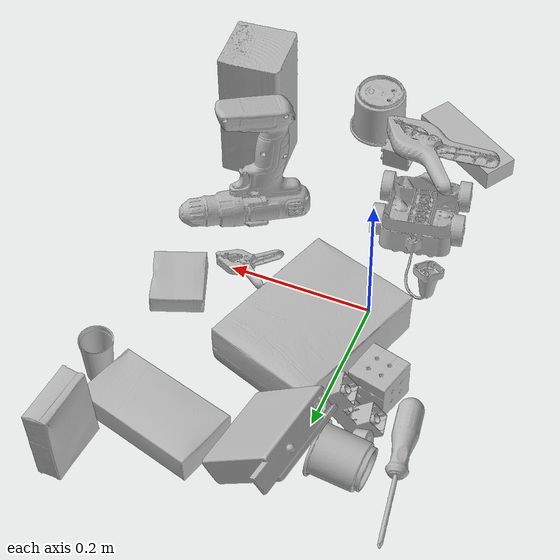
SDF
<sdf version="1.4">
  <world name="default">
    <light name="light1" type="point">
      <pose>0 0 1 0 0 0</pose>
      <diffuse>3 3 3 1</diffuse>
      <specular>3 3 3 1</specular>
    </light>
    <light name="light2" type="point">
      <pose>0 0.5 2 0 0 0</pose>
      <diffuse>1 1 1 1</diffuse>
      <specular>1 1 1 1</specular>
    </light>
    <light name="light3" type="point">
      <pose>0 0.5 2 0 0 0</pose>
      <diffuse>3 3 3 1</diffuse>
      <specular>3 3 3 1</specular>
    </light>
    <scene>
      <ambient>0.7 0.7 0.7</ambient>
    </scene>
    <model name="box21">
      <link name="link_box21">
        <collision name="default">
          <geometry>
            <mesh>
              <uri>model://cracker_box/collision_meshes/collision.obj</uri>
              <scale>1.0 1.0 1.0</scale>
            </mesh>
          </geometry>
          <surface>
            <friction>
              <ode>
                <mu>0.5</mu>
                <mu2>0.5</mu2>
              </ode>
            </friction>
          <contact>
        <ode>
            <max_vel>0</max_vel>
            <min_depth>0.0001</min_depth>
            <kp>1e8</kp>
        </ode>
    </contact></surface>
        </collision>
        <visual name="default">
          <geometry>
            <mesh>
              <uri>model://cracker_box/visual_meshes/visual.dae</uri>
              <scale>1.0 1.0 1.0</scale>
            </mesh>
          </geometry>
        </visual>
        <inertial>
          <mass>2.590176582336426</mass>
          <pose>0.0009464152390137315 0.00025434247800149024 -0.0017029535956680775 -0.0003162072774594163 -0.011106486806667554 0.0025467954652388498</pose>
          <inertia>
            <ixx>0.0065882523</ixx>
            <iyy>0.0108785</iyy>
            <izz>0.015524619</izz>
            <ixy>0</ixy>
            <ixz>0</ixz>
            <iyz>0</iyz>
          </inertia>
        </inertial>
      </link>
      <pose>0.04661187529563904 0.08472764492034912 0.0355316586792469 3.1371852721022275 -0.0165472729124801 1.2551752732759418</pose>
    </model>
    <model name="box22">
      <link name="link_box22">
        <collision name="default">
          <geometry>
            <mesh>
              <uri>model://gelatin_box/collision_meshes/collision.obj</uri>
              <scale>1.0 1.0 1.0</scale>
            </mesh>
          </geometry>
          <surface>
            <friction>
              <ode>
                <mu>0.5</mu>
                <mu2>0.5</mu2>
              </ode>
            </friction>
          <contact>
        <ode>
            <max_vel>0</max_vel>
            <min_depth>0.0001</min_depth>
            <kp>1e8</kp>
        </ode>
    </contact></surface>
        </collision>
        <visual name="default">
          <geometry>
            <mesh>
              <uri>model://gelatin_box/visual_meshes/visual.dae</uri>
              <scale>1.0 1.0 1.0</scale>
            </mesh>
          </geometry>
        </visual>
        <inertial>
          <mass>0.25047940015792847</mass>
          <pose>0.0004319618456065655 0.00011156871914863586 -0.0003640321083366871 -0.0010503719848663328 -0.004755819155031653 0.016440561334722496</pose>
          <inertia>
            <ixx>0.00017681804</ixx>
            <iyy>0.00012630019</iyy>
            <izz>0.0002691564</izz>
            <ixy>0</ixy>
            <ixz>0</ixz>
            <iyz>0</iyz>
          </inertia>
        </inertial>
      </link>
      <pose>0.25050783157348633 0.06107517331838608 0.015168314799666405 0.005597497971440845 -0.007304582375603772 0.35888352886273084</pose>
    </model>
    <model name="box23">
      <link name="link_box23">
        <collision name="default">
          <geometry>
            <mesh>
              <uri>model://pudding_box/collision_meshes/collision.obj</uri>
              <scale>1.0 1.0 1.0</scale>
            </mesh>
          </geometry>
          <surface>
            <friction>
              <ode>
                <mu>0.5</mu>
                <mu2>0.5</mu2>
              </ode>
            </friction>
          <contact>
        <ode>
            <max_vel>0</max_vel>
            <min_depth>0.0001</min_depth>
            <kp>1e8</kp>
        </ode>
    </contact></surface>
        </collision>
        <visual name="default">
          <geometry>
            <mesh>
              <uri>model://pudding_box/visual_meshes/visual.dae</uri>
              <scale>1.0 1.0 1.0</scale>
            </mesh>
          </geometry>
        </visual>
        <inertial>
          <mass>0.39469316601753235</mass>
          <pose>0.0004894821904599667 0.000806788622867316 -0.0005188827635720372 0.005213100892100292 -0.006603796836808699 0.020079821441474487</pose>
          <inertia>
            <ixx>0.00044618026</ixx>
            <iyy>0.00030019323</iyy>
            <izz>0.00065890176</izz>
            <ixy>0</ixy>
            <ixz>0</ixz>
            <iyz>0</iyz>
          </inertia>
        </inertial>
      </link>
      <pose>0.26563429832458496 0.35337039828300476 0.05613690987229347 1.6395861345220324 -0.0011670452080360266 1.4958363459087993</pose>
    </model>
    <model name="cup1">
      <link name="link_cup1">
        <collision name="default">
          <geometry>
            <mesh>
              <uri>model://cup_small/collision_meshes/collision.obj</uri>
              <scale>1.0 1.0 1.0</scale>
            </mesh>
          </geometry>
          <surface>
            <friction>
              <ode>
                <mu>0.5</mu>
                <mu2>0.5</mu2>
              </ode>
            </friction>
          <contact>
        <ode>
            <max_vel>0</max_vel>
            <min_depth>0.0001</min_depth>
            <kp>1e8</kp>
        </ode>
    </contact></surface>
        </collision>
        <visual name="default">
          <geometry>
            <mesh>
              <uri>model://cup_small/visual_meshes/visual.dae</uri>
              <scale>1.0 1.0 1.0</scale>
            </mesh>
          </geometry>
        </visual>
        <inertial>
          <mass>0.021035347133874893</mass>
          <pose>0.0001048244594130665 -0.0003377834218554199 -0.010742821730673313 -0.011493211249102088 -0.015280240526329824 -0.5058153233609384</pose>
          <inertia>
            <ixx>1.2385285e-05</ixx>
            <iyy>1.2449176e-05</iyy>
            <izz>5.591994e-06</izz>
            <ixy>0</ixy>
            <ixz>0</ixz>
            <iyz>0</iyz>
          </inertia>
        </inertial>
      </link>
      <pose>0.2821112871170044 0.2304190993309021 0.03473001718521118 1.353198128556832e-05 -3.466116188813391e-05 1.9232662378427219</pose>
    </model>
    <model name="cup2">
      <link name="link_cup2">
        <collision name="default">
          <geometry>
            <mesh>
              <uri>model://e_cups/collision_meshes/collision.obj</uri>
              <scale>1.0 1.0 1.0</scale>
            </mesh>
          </geometry>
          <surface>
            <friction>
              <ode>
                <mu>0.5</mu>
                <mu2>0.5</mu2>
              </ode>
            </friction>
          <contact>
        <ode>
            <max_vel>0</max_vel>
            <min_depth>0.0001</min_depth>
            <kp>1e8</kp>
        </ode>
    </contact></surface>
        </collision>
        <visual name="default">
          <geometry>
            <mesh>
              <uri>model://e_cups/visual_meshes/visual.dae</uri>
              <scale>1.0 1.0 1.0</scale>
            </mesh>
          </geometry>
        </visual>
        <inertial>
          <mass>0.053841520100831985</mass>
          <pose>0.0011355747701600194 0.0028797851409763098 -0.0038829720579087734 0.69523823542345 0.08767615215021585 -0.5235238319868403</pose>
          <inertia>
            <ixx>4.7474743e-05</ixx>
            <iyy>4.9617902e-05</iyy>
            <izz>4.5391338e-05</izz>
            <ixy>0</ixy>
            <ixz>0</ixz>
            <iyz>0</iyz>
          </inertia>
        </inertial>
      </link>
      <pose>-0.06275252252817154 0.25624316930770874 0.03498122841119766 -1.4814857645361785 0.3340427468897952 -1.590976574814317</pose>
    </model>
    <model name="box11">
      <link name="link_box11">
        <collision name="default">
          <geometry>
            <mesh>
              <uri>model://jenga/collision_meshes/collision.obj</uri>
              <scale>1.0 1.0 1.0</scale>
            </mesh>
          </geometry>
          <surface>
            <friction>
              <ode>
                <mu>0.5</mu>
                <mu2>0.5</mu2>
              </ode>
            </friction>
          <contact>
        <ode>
            <max_vel>0</max_vel>
            <min_depth>0.0001</min_depth>
            <kp>1e8</kp>
        </ode>
    </contact></surface>
        </collision>
        <visual name="default">
          <geometry>
            <mesh>
              <uri>model://jenga/visual_meshes/visual.dae</uri>
              <scale>1.0 1.0 1.0</scale>
            </mesh>
          </geometry>
        </visual>
        <inertial>
          <mass>0.26362571120262146</mass>
          <pose>-2.502855807051674e-07 -0.00010250010382151231 -4.0923401684267446e-05 0.0 -7.342155186052628e-07 0.0</pose>
          <inertia>
            <ixx>7.295163e-05</ixx>
            <iyy>0.0004943182</iyy>
            <izz>0.0005277267</izz>
            <ixy>0</ixy>
            <ixz>0</ixz>
            <iyz>0</iyz>
          </inertia>
        </inertial>
      </link>
      <pose>-0.021598294377326965 -0.3369038999080658 0.014999971725046635 -9.736078699727785e-07 -6.124178839903506e-07 2.5901012864801785</pose>
    </model>
    <model name="box12">
      <link name="link_box12">
        <collision name="default">
          <geometry>
            <mesh>
              <uri>model://rubiks_cube/collision_meshes/collision.obj</uri>
              <scale>1.0 1.0 1.0</scale>
            </mesh>
          </geometry>
          <surface>
            <friction>
              <ode>
                <mu>0.5</mu>
                <mu2>0.5</mu2>
              </ode>
            </friction>
          <contact>
        <ode>
            <max_vel>0</max_vel>
            <min_depth>0.0001</min_depth>
            <kp>1e8</kp>
        </ode>
    </contact></surface>
        </collision>
        <visual name="default">
          <geometry>
            <mesh>
              <uri>model://rubiks_cube/visual_meshes/visual.dae</uri>
              <scale>1.0 1.0 1.0</scale>
            </mesh>
          </geometry>
        </visual>
        <inertial>
          <mass>0.2476155012845993</mass>
          <pose>2.6721041649580002e-05 5.256966323941015e-05 -7.2643156272533815e-06 -0.05467269607811095 -0.09813983501015876 -0.034455733913541106</pose>
          <inertia>
            <ixx>0.00013682418</ixx>
            <iyy>0.0001361861</iyy>
            <izz>0.00013795799</izz>
            <ixy>0</ixy>
            <ixz>0</ixz>
            <iyz>0</iyz>
          </inertia>
        </inertial>
      </link>
      <pose>-0.060039814561605453 0.1242205947637558 0.028679009526968002 -6.218302196564376e-08 -3.047298146893707e-08 2.8875990076533564</pose>
    </model>
    <model name="box13">
      <link name="link_box13">
        <collision name="default">
          <geometry>
            <mesh>
              <uri>model://sugar_box/collision_meshes/collision.obj</uri>
              <scale>1.0 1.0 1.0</scale>
            </mesh>
          </geometry>
          <surface>
            <friction>
              <ode>
                <mu>0.5</mu>
                <mu2>0.5</mu2>
              </ode>
            </friction>
          <contact>
        <ode>
            <max_vel>0</max_vel>
            <min_depth>0.0001</min_depth>
            <kp>1e8</kp>
        </ode>
    </contact></surface>
        </collision>
        <visual name="default">
          <geometry>
            <mesh>
              <uri>model://sugar_box/visual_meshes/visual.dae</uri>
              <scale>1.0 1.0 1.0</scale>
            </mesh>
          </geometry>
        </visual>
        <inertial>
          <mass>0.6861893534660339</mass>
          <pose>0.0010343727190047503 3.849109634757042e-05 -0.0003636480250861496 -0.00040462627129080113 0.001050663522124822 0.0026153787889376494</pose>
          <inertia>
            <ixx>0.0005717311</ixx>
            <iyy>0.0018479523</iyy>
            <izz>0.0022122194</izz>
            <ixy>0</ixy>
            <ixz>0</ixz>
            <iyz>0</iyz>
          </inertia>
        </inertial>
      </link>
      <pose>0.18052305281162262 0.2740069627761841 0.022798599675297737 0.0007760183284756791 -0.023433508986453373 2.8504550631193504</pose>
    </model>
    <model name="box14">
      <link name="link_box14">
        <collision name="default">
          <geometry>
            <mesh>
              <uri>model://wood_block/collision_meshes/collision.obj</uri>
              <scale>1.0 1.0 1.0</scale>
            </mesh>
          </geometry>
          <surface>
            <friction>
              <ode>
                <mu>0.5</mu>
                <mu2>0.5</mu2>
              </ode>
            </friction>
          <contact>
        <ode>
            <max_vel>0</max_vel>
            <min_depth>0.0001</min_depth>
            <kp>1e8</kp>
        </ode>
    </contact></surface>
        </collision>
        <visual name="default">
          <geometry>
            <mesh>
              <uri>model://wood_block/visual_meshes/visual.dae</uri>
              <scale>1.0 1.0 1.0</scale>
            </mesh>
          </geometry>
        </visual>
        <inertial>
          <mass>2.2081377506256104</mass>
          <pose>-5.813315965497168e-06 -0.000570809468626976 0.00026408585836179554 -0.052206634003801496 -0.0051926960857359 -0.00686137798931887</pose>
          <inertia>
            <ixx>0.0029548227</ixx>
            <iyy>0.009334286</iyy>
            <izz>0.0092993695</izz>
            <ixy>0</ixy>
            <ixz>0</ixz>
            <iyz>0</iyz>
          </inertia>
        </inertial>
      </link>
      <pose>0.25306737422943115 -0.21627023816108704 0.10358985513448715 2.7071044719440756 -1.5707878030167877 2.0953289221253377</pose>
    </model>
    <model name="cup15">
      <link name="link_cup15">
        <collision name="default">
          <geometry>
            <mesh>
              <uri>model://g_cups/collision_meshes/collision.obj</uri>
              <scale>1.0 1.0 1.0</scale>
            </mesh>
          </geometry>
          <surface>
            <friction>
              <ode>
                <mu>0.5</mu>
                <mu2>0.5</mu2>
              </ode>
            </friction>
          <contact>
        <ode>
            <max_vel>0</max_vel>
            <min_depth>0.0001</min_depth>
            <kp>1e8</kp>
        </ode>
    </contact></surface>
        </collision>
        <visual name="default">
          <geometry>
            <mesh>
              <uri>model://g_cups/visual_meshes/visual.dae</uri>
              <scale>1.0 1.0 1.0</scale>
            </mesh>
          </geometry>
        </visual>
        <inertial>
          <mass>0.09534990042448044</mass>
          <pose>-0.000794626830611378 -4.206429366604425e-05 -0.002132937079295516 -0.21382187015428292 -0.3141046168173621 0.3112040328096479</pose>
          <inertia>
            <ixx>0.00011129469</ixx>
            <iyy>0.0001109161</iyy>
            <izz>0.00011528214</izz>
            <ixy>0</ixy>
            <ixz>0</ixz>
            <iyz>0</iyz>
          </inertia>
        </inertial>
      </link>
      <pose>0.1134280189871788 -0.3361709713935852 0.03711579740047455 -3.1415799452295556 2.7115156742368824e-05 1.7616813118827985</pose>
    </model>
    <model name="toy1">
      <link name="link_toy1">
        <collision name="default">
          <geometry>
            <mesh>
              <uri>model://a_lego_duplo/collision_meshes/collision.obj</uri>
              <scale>1.0 1.0 1.0</scale>
            </mesh>
          </geometry>
          <surface>
            <friction>
              <ode>
                <mu>0.5</mu>
                <mu2>0.5</mu2>
              </ode>
            </friction>
          <contact>
        <ode>
            <max_vel>0</max_vel>
            <min_depth>0.0001</min_depth>
            <kp>1e8</kp>
        </ode>
    </contact></surface>
        </collision>
        <visual name="default">
          <geometry>
            <mesh>
              <uri>model://a_lego_duplo/visual_meshes/visual.dae</uri>
              <scale>1.0 1.0 1.0</scale>
            </mesh>
          </geometry>
        </visual>
        <inertial>
          <mass>0.019288161769509315</mass>
          <pose>-0.00011337728938087821 0.00018517542048357427 0.00036926069878973067 -0.014116980162122142 -0.00012566491180396528 6.141847735431564e-05</pose>
          <inertia>
            <ixx>2.4728956e-06</ixx>
            <iyy>5.539828e-06</iyy>
            <izz>6.86231e-06</izz>
            <ixy>0</ixy>
            <ixz>0</ixz>
            <iyz>0</iyz>
          </inertia>
        </inertial>
      </link>
      <pose>0.28339576721191406 -0.35700523853302 0.012112000957131386 -1.1615799518461596e-08 -7.3722930235271165e-09 -1.567580641971657</pose>
    </model>
    <model name="toy2">
      <link name="link_toy2">
        <collision name="default">
          <geometry>
            <mesh>
              <uri>model://nine_hole_peg_test/collision_meshes/collision.obj</uri>
              <scale>1.0 1.0 1.0</scale>
            </mesh>
          </geometry>
          <surface>
            <friction>
              <ode>
                <mu>0.5</mu>
                <mu2>0.5</mu2>
              </ode>
            </friction>
          <contact>
        <ode>
            <max_vel>0</max_vel>
            <min_depth>0.0001</min_depth>
            <kp>1e8</kp>
        </ode>
    </contact></surface>
        </collision>
        <visual name="default">
          <geometry>
            <mesh>
              <uri>model://nine_hole_peg_test/visual_meshes/visual.dae</uri>
              <scale>1.0 1.0 1.0</scale>
            </mesh>
          </geometry>
        </visual>
        <inertial>
          <mass>0.4416040778160095</mass>
          <pose>-0.004617387894541025 -0.009647616185247898 2.646069333422929e-05 -0.001466680632441769 0.0007194151669294288 -0.6342433000636255</pose>
          <inertia>
            <ixx>0.00069052057</ixx>
            <iyy>0.0006447319</iyy>
            <izz>0.0012099957</izz>
            <ixy>0</ixy>
            <ixz>0</ixz>
            <iyz>0</iyz>
          </inertia>
        </inertial>
      </link>
      <pose>0.02370511181652546 0.2829676568508148 0.0594165064394474 -3.133109855530862 -0.7135978988013499 2.968890699590277</pose>
    </model>
    <model name="toy3">
      <link name="link_toy3">
        <collision name="default">
          <geometry>
            <mesh>
              <uri>model://b_lego_duplo/collision_meshes/collision.obj</uri>
              <scale>1.0 1.0 1.0</scale>
            </mesh>
          </geometry>
          <surface>
            <friction>
              <ode>
                <mu>0.5</mu>
                <mu2>0.5</mu2>
              </ode>
            </friction>
          <contact>
        <ode>
            <max_vel>0</max_vel>
            <min_depth>0.0001</min_depth>
            <kp>1e8</kp>
        </ode>
    </contact></surface>
        </collision>
        <visual name="default">
          <geometry>
            <mesh>
              <uri>model://b_lego_duplo/visual_meshes/visual.dae</uri>
              <scale>1.0 1.0 1.0</scale>
            </mesh>
          </geometry>
        </visual>
        <inertial>
          <mass>0.05141952633857727</mass>
          <pose>-0.00011053046182496473 -9.15286273084348e-06 0.0019294298253953457 -0.03749504579203769 -0.026353926476799443 0.45190277296460496</pose>
          <inertia>
            <ixx>1.0523392e-05</ixx>
            <iyy>1.0594135e-05</iyy>
            <izz>9.376003e-06</izz>
            <ixy>0</ixy>
            <ixz>0</ixz>
            <iyz>0</iyz>
          </inertia>
        </inertial>
      </link>
      <pose>0.06455545872449875 -0.2812226116657257 0.016184145584702492 -0.0115117082181412 -1.56226548340232 -3.1142444774580693</pose>
    </model>
    <model name="toy4">
      <link name="link_toy4">
        <collision name="default">
          <geometry>
            <mesh>
              <uri>model://e_lego_duplo/collision_meshes/collision.obj</uri>
              <scale>1.0 1.0 1.0</scale>
            </mesh>
          </geometry>
          <surface>
            <friction>
              <ode>
                <mu>0.5</mu>
                <mu2>0.5</mu2>
              </ode>
            </friction>
          <contact>
        <ode>
            <max_vel>0</max_vel>
            <min_depth>0.0001</min_depth>
            <kp>1e8</kp>
        </ode>
    </contact></surface>
        </collision>
        <visual name="default">
          <geometry>
            <mesh>
              <uri>model://e_lego_duplo/visual_meshes/visual.dae</uri>
              <scale>1.0 1.0 1.0</scale>
            </mesh>
          </geometry>
        </visual>
        <inertial>
          <mass>0.10851083695888519</mass>
          <pose>0.0003256036143284291 0.00023485413112211972 0.0019521439680829644 -0.022567807713092337 -6.825385155411165e-05 -0.007625153430497312</pose>
          <inertia>
            <ixx>2.2628092e-05</ixx>
            <iyy>9.28715e-05</iyy>
            <izz>9.0438196e-05</izz>
            <ixy>0</ixy>
            <ixz>0</ixz>
            <iyz>0</iyz>
          </inertia>
        </inertial>
      </link>
      <pose>-0.04439482092857361 0.18326464295387268 0.03695330023765564 3.140126677949185 0.9319987560637999 -2.9519727302906964</pose>
    </model>
    <model name="toy5">
      <link name="link_toy5">
        <collision name="default">
          <geometry>
            <mesh>
              <uri>model://e_toy_airplane/collision_meshes/collision.obj</uri>
              <scale>1.0 1.0 1.0</scale>
            </mesh>
          </geometry>
          <surface>
            <friction>
              <ode>
                <mu>0.5</mu>
                <mu2>0.5</mu2>
              </ode>
            </friction>
          <contact>
        <ode>
            <max_vel>0</max_vel>
            <min_depth>0.0001</min_depth>
            <kp>1e8</kp>
        </ode>
    </contact></surface>
        </collision>
        <visual name="default">
          <geometry>
            <mesh>
              <uri>model://e_toy_airplane/visual_meshes/visual.dae</uri>
              <scale>1.0 1.0 1.0</scale>
            </mesh>
          </geometry>
        </visual>
        <inertial>
          <mass>0.028576364740729332</mass>
          <pose>0.00011740469926735386 -2.248284363304265e-05 -0.011187203228473663 0.005518470588584354 0.009228302056362008 0.15041344019646216</pose>
          <inertia>
            <ixx>8.721834e-06</ixx>
            <iyy>8.6326145e-06</iyy>
            <izz>2.6212538e-06</izz>
            <ixy>0</ixy>
            <ixz>0</ixz>
            <iyz>0</iyz>
          </inertia>
        </inertial>
      </link>
      <pose>-0.049189493060112 0.21195389330387115 0.011338939890265465 2.606825628200323 1.287739350346831 2.606999451681894</pose>
    </model>
    <model name="toy6">
      <link name="link_toy6">
        <collision name="default">
          <geometry>
            <mesh>
              <uri>model://g_lego_duplo/collision_meshes/collision.obj</uri>
              <scale>1.0 1.0 1.0</scale>
            </mesh>
          </geometry>
          <surface>
            <friction>
              <ode>
                <mu>0.5</mu>
                <mu2>0.5</mu2>
              </ode>
            </friction>
          <contact>
        <ode>
            <max_vel>0</max_vel>
            <min_depth>0.0001</min_depth>
            <kp>1e8</kp>
        </ode>
    </contact></surface>
        </collision>
        <visual name="default">
          <geometry>
            <mesh>
              <uri>model://g_lego_duplo/visual_meshes/visual.dae</uri>
              <scale>1.0 1.0 1.0</scale>
            </mesh>
          </geometry>
        </visual>
        <inertial>
          <mass>0.2849176824092865</mass>
          <pose>-0.050047703087329865 0.0017554622609168291 0.0038806754164397717 0.010963023424049216 0.03810828912622395 -0.09653028734865207</pose>
          <inertia>
            <ixx>0.000412849</ixx>
            <iyy>0.0012481753</iyy>
            <izz>0.0015615128</izz>
            <ixy>0</ixy>
            <ixz>0</ixz>
            <iyz>0</iyz>
          </inertia>
        </inertial>
      </link>
      <pose>-0.030536800622940063 -0.10078025609254837 0.06316012144088745 -3.141585865272889 -0.3023623246604328 1.7685162540838184</pose>
    </model>
    <model name="hardware1">
      <link name="link_hardware1">
        <collision name="default">
          <geometry>
            <mesh>
              <uri>model://large_clamp/collision_meshes/collision.obj</uri>
              <scale>1.0 1.0 1.0</scale>
            </mesh>
          </geometry>
          <surface>
            <friction>
              <ode>
                <mu>0.5</mu>
                <mu2>0.5</mu2>
              </ode>
            </friction>
          <contact>
        <ode>
            <max_vel>0</max_vel>
            <min_depth>0.0001</min_depth>
            <kp>1e8</kp>
        </ode>
    </contact></surface>
        </collision>
        <visual name="default">
          <geometry>
            <mesh>
              <uri>model://large_clamp/visual_meshes/visual.dae</uri>
              <scale>1.0 1.0 1.0</scale>
            </mesh>
          </geometry>
        </visual>
        <inertial>
          <mass>0.15191641449928284</mass>
          <pose>0.006369356997311115 0.00035856704926118255 -0.00018398075189907104 -0.0021330805905738653 0.00967158570552682 0.02663313568730603</pose>
          <inertia>
            <ixx>0.00013403181</ixx>
            <iyy>0.0002545337</iyy>
            <izz>0.00036821538</izz>
            <ixy>0</ixy>
            <ixz>0</ixz>
            <iyz>0</iyz>
          </inertia>
        </inertial>
      </link>
      <pose>0.01296338252723217 -0.2748990058898926 0.047964535653591156 0.1682725447830385 0.03384830865328767 -0.4149379032735977</pose>
    </model>
    <model name="hardware2">
      <link name="link_hardware2">
        <collision name="default">
          <geometry>
            <mesh>
              <uri>model://phillips_screwdriver/collision_meshes/collision.obj</uri>
              <scale>1.0 1.0 1.0</scale>
            </mesh>
          </geometry>
          <surface>
            <friction>
              <ode>
                <mu>0.5</mu>
                <mu2>0.5</mu2>
              </ode>
            </friction>
          <contact>
        <ode>
            <max_vel>0</max_vel>
            <min_depth>0.0001</min_depth>
            <kp>1e8</kp>
        </ode>
    </contact></surface>
        </collision>
        <visual name="default">
          <geometry>
            <mesh>
              <uri>model://phillips_screwdriver/visual_meshes/visual.dae</uri>
              <scale>1.0 1.0 1.0</scale>
            </mesh>
          </geometry>
        </visual>
        <inertial>
          <mass>0.09855502843856812</mass>
          <pose>-0.04777182266116142 0.001036230125464499 -0.00045555492397397757 -0.15717104537538515 0.005850995063257979 -0.0021567379341223374</pose>
          <inertia>
            <ixx>1.15792045e-05</ixx>
            <iyy>0.00014518296</iyy>
            <izz>0.00014530632</izz>
            <ixy>0</ixy>
            <ixz>0</ixz>
            <iyz>0</iyz>
          </inertia>
        </inertial>
      </link>
      <pose>-0.12574326992034912 0.23324871063232422 0.015812017023563385 -0.3293004314924865 0.036284562543188216 1.7363199080584066</pose>
    </model>
    <model name="hardware3">
      <link name="link_hardware3">
        <collision name="default">
          <geometry>
            <mesh>
              <uri>model://power_drill/collision_meshes/collision.obj</uri>
              <scale>1.0 1.0 1.0</scale>
            </mesh>
          </geometry>
          <surface>
            <friction>
              <ode>
                <mu>0.5</mu>
                <mu2>0.5</mu2>
              </ode>
            </friction>
          <contact>
        <ode>
            <max_vel>0</max_vel>
            <min_depth>0.0001</min_depth>
            <kp>1e8</kp>
        </ode>
    </contact></surface>
        </collision>
        <visual name="default">
          <geometry>
            <mesh>
              <uri>model://power_drill/visual_meshes/visual.dae</uri>
              <scale>1.0 1.0 1.0</scale>
            </mesh>
          </geometry>
        </visual>
        <inertial>
          <mass>0.8579708337783813</mass>
          <pose>-0.01478054840117693 0.01436943281441927 0.0012414173688739538 0.004609163561922946 0.004073017669368797 -0.18362705043487879</pose>
          <inertia>
            <ixx>0.0034962718</ixx>
            <iyy>0.0013756006</iyy>
            <izz>0.0046174442</izz>
            <ixy>0</ixy>
            <ixz>0</ixz>
            <iyz>0</iyz>
          </inertia>
        </inertial>
      </link>
      <pose>0.22691640257835388 -0.10439110547304153 0.09178252518177032 -1.3355035123363797 -0.055177782113527286 0.6030161285289592</pose>
    </model>
    <model name="hardware4">
      <link name="link_hardware4">
        <collision name="default">
          <geometry>
            <mesh>
              <uri>model://medium_clamp/collision_meshes/collision.obj</uri>
              <scale>1.0 1.0 1.0</scale>
            </mesh>
          </geometry>
          <surface>
            <friction>
              <ode>
                <mu>0.5</mu>
                <mu2>0.5</mu2>
              </ode>
            </friction>
          <contact>
        <ode>
            <max_vel>0</max_vel>
            <min_depth>0.0001</min_depth>
            <kp>1e8</kp>
        </ode>
    </contact></surface>
        </collision>
        <visual name="default">
          <geometry>
            <mesh>
              <uri>model://medium_clamp/visual_meshes/visual.dae</uri>
              <scale>1.0 1.0 1.0</scale>
            </mesh>
          </geometry>
        </visual>
        <inertial>
          <mass>0.019661318510770798</mass>
          <pose>0.005390993319451809 0.0003953249251935631 -0.00012221586075611413 -0.0012269159857183107 0.002584502991641296 0.038207758549707246</pose>
          <inertia>
            <ixx>5.356451e-06</ixx>
            <iyy>7.795151e-06</iyy>
            <izz>1.2006867e-05</izz>
            <ixy>0</ixy>
            <ixz>0</ixz>
            <iyz>0</iyz>
          </inertia>
        </inertial>
      </link>
      <pose>0.17799381911754608 -0.0021330909803509712 0.01331473607569933 -3.019528474314876 0.07747262576458433 0.04979880428930537</pose>
    </model>
  <physics type="ode">
      <max_contacts>50</max_contacts>
      <ode>
        <solver>
          <type>quick</type>
          <iters>75</iters>
        </solver>
        <constraints>
          <contact_max_correcting_vel>0</contact_max_correcting_vel>
          <contact_surface_layer>0</contact_surface_layer>
        </constraints>
      </ode>
    </physics></world>
</sdf>
